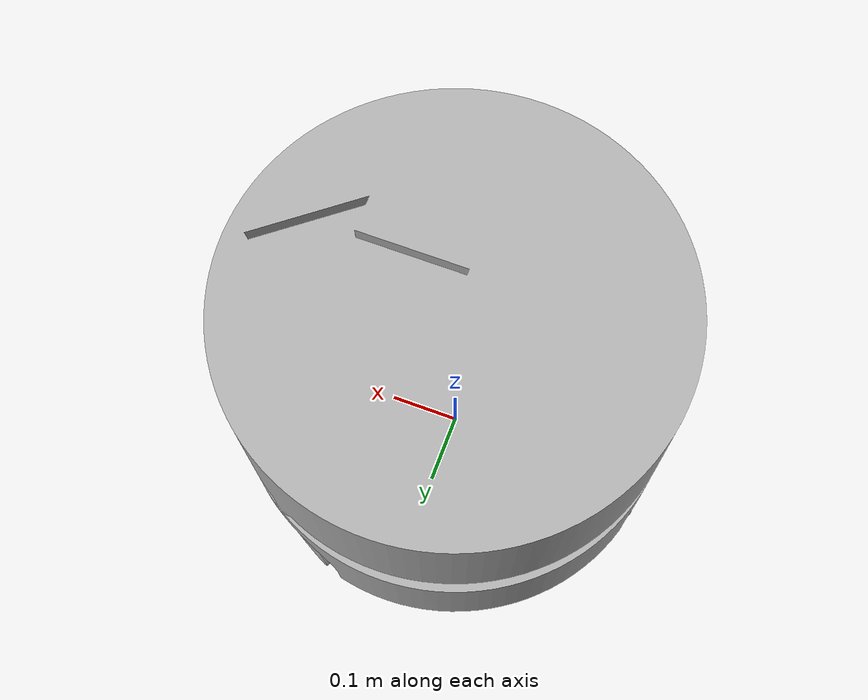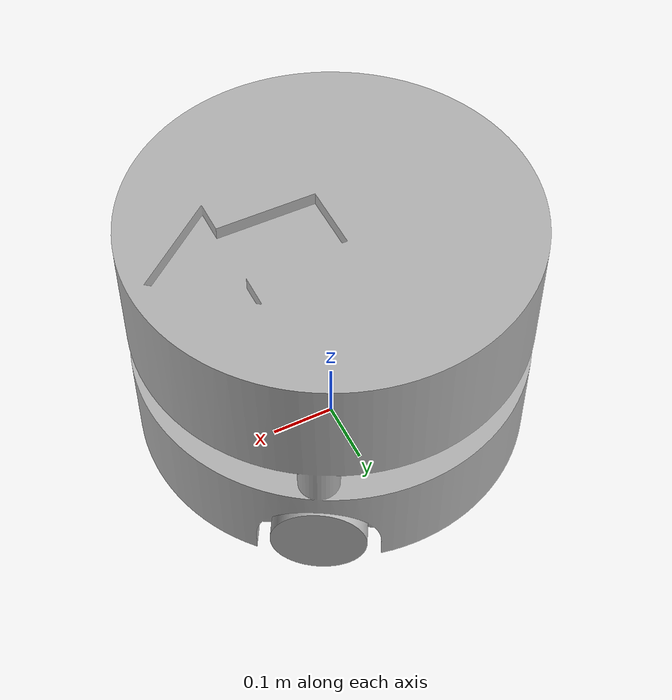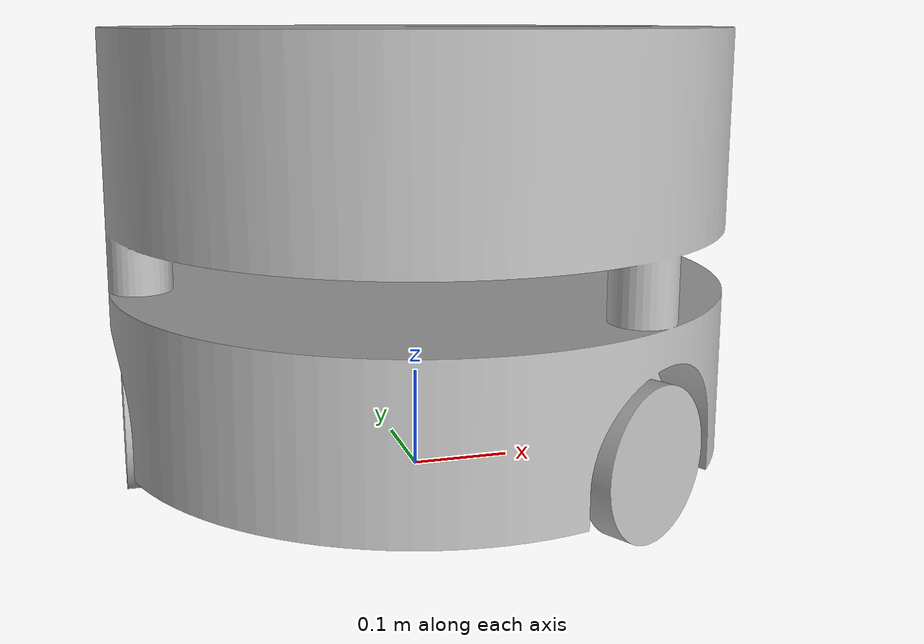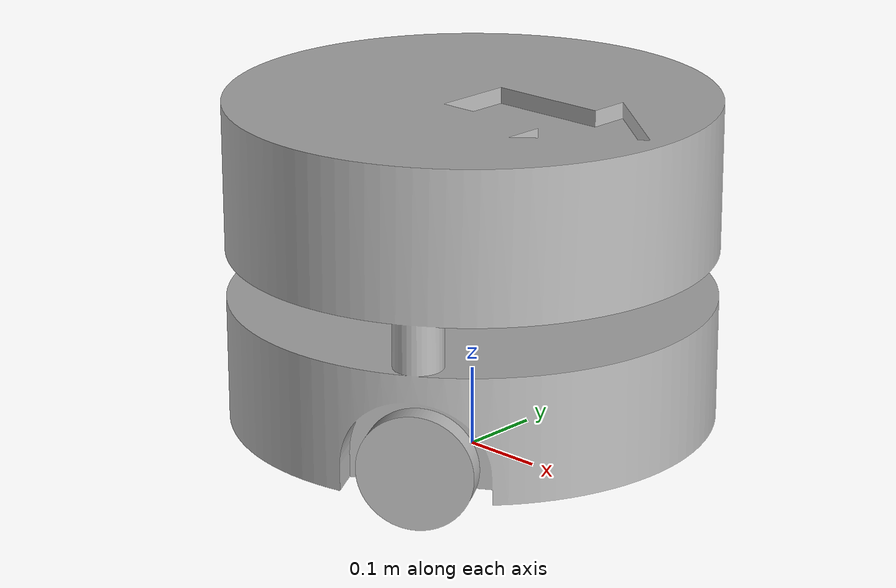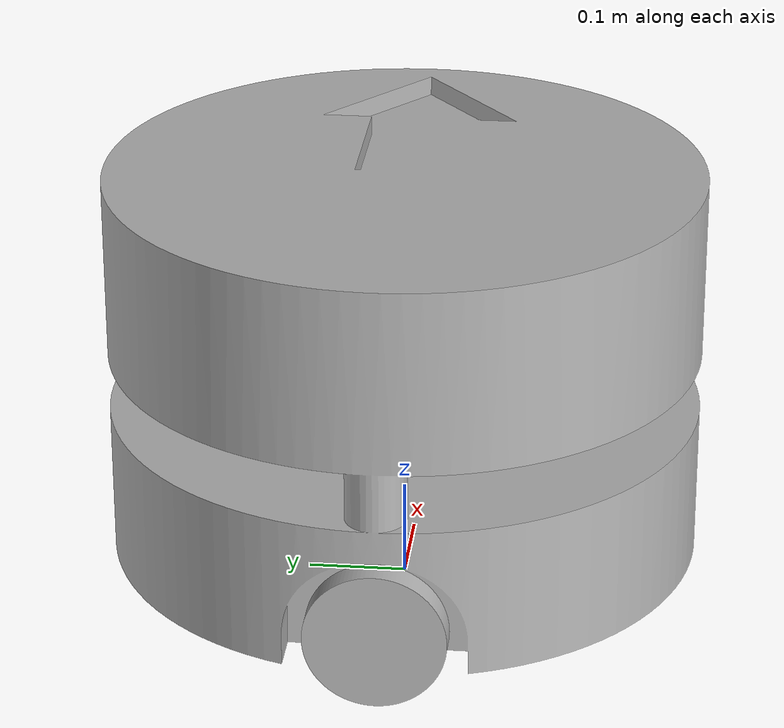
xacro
<?xml version="1.0" ?>
<robot name="Base" xmlns:xacro="http://www.ros.org/wiki/xacro">

<xacro:include filename="$(find base_description)/urdf/materials.xacro" />
<xacro:include filename="$(find base_description)/urdf/Base.trans" />
<xacro:include filename="$(find base_description)/urdf/Base.gazebo" />
<xacro:include filename="$(find base_description)/urdf/ros2_control.xacro"/>

<link name="base_footprint">
</link>

<link name="base_link">
  <inertial>
    <origin xyz="-0.000756220885792009 1.0001700639394954e-16 0.24421151592975363" rpy="0 0 0"/>
    <mass value="730.9639104709069"/>
    <inertia ixx="27.306733" iyy="27.220087" izz="32.408136" ixy="-0.0" iyz="0.0" ixz="0.101593"/>
  </inertial>
  <visual>
    <origin xyz="0 0 0" rpy="0 0 0"/>
    <geometry>
      <mesh filename="file://$(find base_description)/meshes/base_link.stl" scale="0.001 0.001 0.001"/>
    </geometry>
    <material name="silver"/>
  </visual>
  <collision>
    <origin xyz="0 0 0" rpy="0 0 0"/>
    <geometry>
      <mesh filename="file://$(find base_description)/meshes/base_link.stl" scale="0.001 0.001 0.001"/>
    </geometry>
  </collision>
</link>

<link name="front_right_wheel_1">
  <inertial>
    <origin xyz="0.016618434655042452 -0.028784684575141606 0.0" rpy="0 0 0"/>
    <mass value="3.494534880257344"/>
    <inertia ixx="0.005404" iyy="0.007336" izz="0.004438" ixy="-0.001673" iyz="0.0" ixz="-0.0"/>
  </inertial>
  <visual>
    <origin xyz="-0.12186 0.211067 -0.07" rpy="0 0 0"/>
    <geometry>
      <mesh filename="file://$(find base_description)/meshes/front_right_wheel_1.stl" scale="0.001 0.001 0.001"/>
    </geometry>
    <material name="silver"/>
  </visual>
  <collision>
    <origin xyz="-0.12186 0.211067 -0.07" rpy="0 0 0"/>
    <geometry>
      <mesh filename="file://$(find base_description)/meshes/front_right_wheel_1.stl" scale="0.001 0.001 0.001"/>
    </geometry>
  </collision>
</link>

<link name="front_left_wheel_1">
  <inertial>
    <origin xyz="0.016618434655043063 0.0287846845751413 4.163336342344337e-17" rpy="0 0 0"/>
    <mass value="3.494534880257335"/>
    <inertia ixx="0.005404" iyy="0.007336" izz="0.004438" ixy="0.001673" iyz="0.0" ixz="0.0"/>
  </inertial>
  <visual>
    <origin xyz="-0.12186 -0.211067 -0.07" rpy="0 0 0"/>
    <geometry>
      <mesh filename="file://$(find base_description)/meshes/front_left_wheel_1.stl" scale="0.001 0.001 0.001"/>
    </geometry>
    <material name="silver"/>
  </visual>
  <collision>
    <origin xyz="-0.12186 -0.211067 -0.07" rpy="0 0 0"/>
    <geometry>
      <mesh filename="file://$(find base_description)/meshes/front_left_wheel_1.stl" scale="0.001 0.001 0.001"/>
    </geometry>
  </collision>
</link>

<link name="rear_wheel_1">
  <inertial>
    <origin xyz="-0.03323786931008607 6.99644816738459e-14 2.3592239273284576e-16" rpy="0 0 0"/>
    <mass value="3.4945348802573313"/>
    <inertia ixx="0.008302" iyy="0.004438" izz="0.004438" ixy="0.0" iyz="0.0" ixz="0.0"/>
  </inertial>
  <visual>
    <origin xyz="0.243719 -0.0 -0.07" rpy="0 0 0"/>
    <geometry>
      <mesh filename="file://$(find base_description)/meshes/rear_wheel_1.stl" scale="0.001 0.001 0.001"/>
    </geometry>
    <material name="silver"/>
  </visual>
  <collision>
    <origin xyz="0.243719 -0.0 -0.07" rpy="0 0 0"/>
    <geometry>
      <mesh filename="file://$(find base_description)/meshes/rear_wheel_1.stl" scale="0.001 0.001 0.001"/>
    </geometry>
  </collision>
</link>

<link name="lidar_1">
  <inertial>
    <origin xyz="9.650038500203382e-18 -2.895011550061015e-17 -0.193" rpy="0 0 0"/>
    <mass value="3.6992253496019805"/>
    <inertia ixx="0.003422" iyy="0.003422" izz="0.004624" ixy="0.0" iyz="0.0" ixz="0.0"/>
  </inertial>
  <visual>
    <origin xyz="-0.0 -0.0 -0.193" rpy="0 0 0"/>
    <geometry>
      <mesh filename="file://$(find base_description)/meshes/lidar_1.stl" scale="0.001 0.001 0.001"/>
    </geometry>
    <material name="silver"/>
  </visual>
  <collision>
    <origin xyz="-0.0 -0.0 -0.193" rpy="0 0 0"/>
    <geometry>
      <mesh filename="file://$(find base_description)/meshes/lidar_1.stl" scale="0.001 0.001 0.001"/>
    </geometry>
  </collision>
</link>

<joint name="base_footprint_joint" type="fixed">
    <origin rpy="0 0 0" xyz="0 0 0.010" />
    <parent link="base_footprint" />
    <child link="base_link" />
</joint>

<joint name="right_wheel_to_base" type="continuous">
  <origin xyz="0.12186 -0.211067 0.07" rpy="0 0 0"/>
  <parent link="base_link"/>
  <child link="front_right_wheel_1"/>
  <axis xyz="-0.5 0.866025 0.0"/>
</joint>

<joint name="left_wheel_to_base" type="continuous">
  <origin xyz="0.12186 0.211067 0.07" rpy="0 0 0"/>
  <parent link="base_link"/>
  <child link="front_left_wheel_1"/>
  <axis xyz="-0.5 -0.866025 0.0"/>
</joint>

<joint name="back_wheel_to_base" type="continuous">
  <origin xyz="-0.243719 0.0 0.07" rpy="0 0 0"/>
  <parent link="base_link"/>
  <child link="rear_wheel_1"/>
  <axis xyz="1.0 -0.0 0.0"/>
</joint>

<joint name="lidar_to_base" type="fixed">
  <origin xyz="0.0 0.0 0.203" rpy="0 0 0"/>
  <parent link="base_link"/>
  <child link="lidar_1"/>
</joint>

</robot>

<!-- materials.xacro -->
<robot name="Base" xmlns:xacro="http://www.ros.org/wiki/xacro" >

<material name="silver">
  <color rgba="0.700 0.700 0.700 1.000"/>
</material>

</robot>

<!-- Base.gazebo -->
<robot name="Base" xmlns:xacro="http://www.ros.org/wiki/xacro" >

<xacro:property name="body_color" value="Gazebo/Silver" />

<gazebo>
  <plugin name="control" filename="libgazebo_ros_control.so"/>
</gazebo>
<gazebo reference="base_link">
  <material>${body_color}</material>
  <mu1>0.2</mu1>
  <mu2>0.2</mu2>
  <self_collide>true</self_collide>
  <gravity>true</gravity>
</gazebo>

<gazebo reference="front_right_wheel_1">
  <material>${body_color}</material>
  <mu1>0.2</mu1>
  <mu2>0.2</mu2>
  <self_collide>true</self_collide>
</gazebo>

<gazebo reference="front_left_wheel_1">
  <material>${body_color}</material>
  <mu1>0.2</mu1>
  <mu2>0.2</mu2>
  <self_collide>true</self_collide>
</gazebo>

<gazebo reference="rear_wheel_1">
  <material>${body_color}</material>
  <mu1>0.2</mu1>
  <mu2>0.2</mu2>
  <self_collide>true</self_collide>
</gazebo>

<gazebo reference="lidar_1">
  <material>${body_color}</material>
  <mu1>0.2</mu1>
  <mu2>0.2</mu2>
  <self_collide>true</self_collide>
</gazebo>

<gazebo reference="lidar_1">
    <sensor type="ray" name="head_hokuyo_sensor">
        <visualize> false </visualize>
        <updateRate>30</updateRate>
        <ray>
            <scan>
              <horizontal>
                <samples>920</samples>
                <resolution>1</resolution>
                <min_angle>-3.14</min_angle>
                <max_angle>3.14</max_angle>
              </horizontal>
            </scan>
            <range>
              <min>0.4</min>
              <max>40.0</max>
              <resolution>0.05</resolution>
            </range>
            <noise>
              <type>gaussian</type>
              <mean>0.0</mean>
              <stddev>0.01</stddev>
            </noise>
        </ray>

        <plugin name="gazebo_ros_head_hokuyo_controlle" filename="libgazebo_ros_ray_sensor.so" >
        <ros>
          <remapping>~/out:=/scan</remapping>
        </ros>
        <output_type>sensor_msgs/LaserScan</output_type>
        </plugin>
    </sensor>
  </gazebo>

  <gazebo>
    <plugin name="object_controller" filename="libgazebo_ros_planar_move.so">
      <commandTopic>cmd_vel</commandTopic>
      <odometryTopic>odom</odometryTopic>
      <odometryFrame>odom</odometryFrame>
      <odometryRate>20.0</odometryRate>
      <robotBaseFrame>base_footprint</robotBaseFrame>
    </plugin>
  </gazebo>

</robot>
